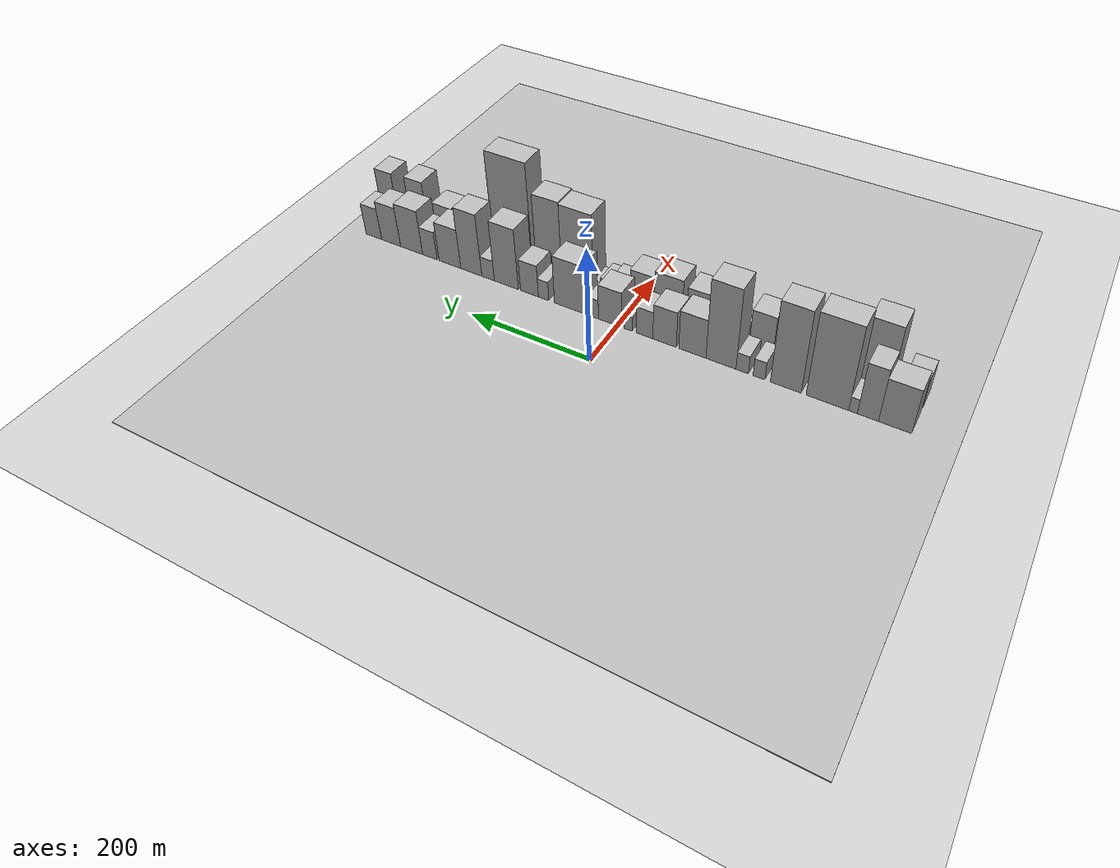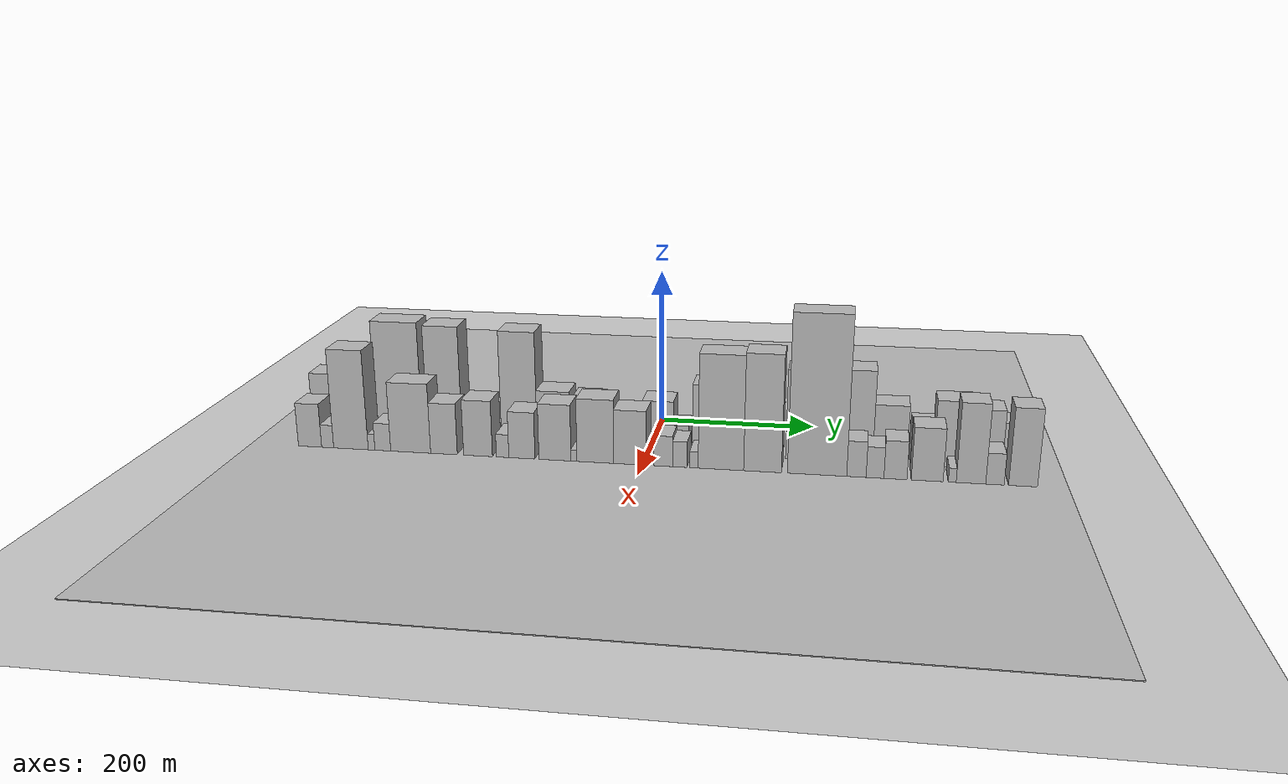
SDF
<sdf version="1.6">
 <world name="default">
  <include><name>ground_plane_1</name><uri>model://HANNAS_ground_plane</uri></include>
  <include>
   <name>ground_plane_2</name>
   <uri>model://HANNAS_ground_plane</uri>
   <pose>100 0 0  0 0 0</pose>
  </include>
  <model name="building_1">
   <static>1</static>
   <pose>100.0000 -415.4575 0 0.000000 0.000000 0.000000</pose>
   <link name="link">
    <pose>0 0 40.50 0 0 0</pose>
    <collision name="collision"><geometry><box><size>40.0000 45.0849 81.0000</size></box></geometry></collision>
    <visual name="visual">
     <cast_shadows>0</cast_shadows>
     <geometry><box><size>40.0000 45.0849 81.0000</size></box></geometry>
     <material>
      <script>
       <uri>model://HANNAS_wall/materials/scripts</uri>
       <uri>model://HANNAS_wall/materials/textures</uri>
       <name>vrc/HANNAS_wall</name>
      </script>
     </material>
    </visual>
   </link>
  </model>
  <model name="building_2">
   <static>1</static>
   <pose>100.0000 -378.4320 0 0.000000 0.000000 0.000000</pose>
   <link name="link">
    <pose>0 0 48.00 0 0 0</pose>
    <collision name="collision"><geometry><box><size>40.0000 28.9662 96.0000</size></box></geometry></collision>
    <visual name="visual">
     <cast_shadows>0</cast_shadows>
     <geometry><box><size>40.0000 28.9662 96.0000</size></box></geometry>
     <material>
      <script>
       <uri>model://HANNAS_wall/materials/scripts</uri>
       <uri>model://HANNAS_wall/materials/textures</uri>
       <name>vrc/HANNAS_wall</name>
      </script>
     </material>
    </visual>
   </link>
  </model>
  <model name="building_3">
   <static>1</static>
   <pose>100.0000 -357.8599 0 0.000000 0.000000 0.000000</pose>
   <link name="link">
    <pose>0 0 13.50 0 0 0</pose>
    <collision name="collision"><geometry><box><size>40.0000 12.1781 27.0000</size></box></geometry></collision>
    <visual name="visual">
     <cast_shadows>0</cast_shadows>
     <geometry><box><size>40.0000 12.1781 27.0000</size></box></geometry>
     <material>
      <script>
       <uri>model://HANNAS_wall/materials/scripts</uri>
       <uri>model://HANNAS_wall/materials/textures</uri>
       <name>vrc/HANNAS_wall</name>
      </script>
     </material>
    </visual>
   </link>
  </model>
  <model name="building_4">
   <static>1</static>
   <pose>100.0000 -321.5993 0 0.000000 0.000000 0.000000</pose>
   <link name="link">
    <pose>0 0 76.50 0 0 0</pose>
    <collision name="collision"><geometry><box><size>40.0000 60.3430 153.0000</size></box></geometry></collision>
    <visual name="visual">
     <cast_shadows>0</cast_shadows>
     <geometry><box><size>40.0000 60.3430 153.0000</size></box></geometry>
     <material>
      <script>
       <uri>model://HANNAS_wall/materials/scripts</uri>
       <uri>model://HANNAS_wall/materials/textures</uri>
       <name>vrc/HANNAS_wall</name>
      </script>
     </material>
    </visual>
   </link>
  </model>
  <model name="building_5">
   <static>1</static>
   <pose>100.0000 -261.8139 0 0.000000 0.000000 0.000000</pose>
   <link name="link">
    <pose>0 0 75.00 0 0 0</pose>
    <collision name="collision"><geometry><box><size>40.0000 45.2278 150.0000</size></box></geometry></collision>
    <visual name="visual">
     <cast_shadows>0</cast_shadows>
     <geometry><box><size>40.0000 45.2278 150.0000</size></box></geometry>
     <material>
      <script>
       <uri>model://HANNAS_wall/materials/scripts</uri>
       <uri>model://HANNAS_wall/materials/textures</uri>
       <name>vrc/HANNAS_wall</name>
      </script>
     </material>
    </visual>
   </link>
  </model>
  <model name="building_6">
   <static>1</static>
   <pose>100.0000 -222.3856 0 0.000000 0.000000 0.000000</pose>
   <link name="link">
    <pose>0 0 16.50 0 0 0</pose>
    <collision name="collision"><geometry><box><size>40.0000 17.6289 33.0000</size></box></geometry></collision>
    <visual name="visual">
     <cast_shadows>0</cast_shadows>
     <geometry><box><size>40.0000 17.6289 33.0000</size></box></geometry>
     <material>
      <script>
       <uri>model://HANNAS_wall/materials/scripts</uri>
       <uri>model://HANNAS_wall/materials/textures</uri>
       <name>vrc/HANNAS_wall</name>
      </script>
     </material>
    </visual>
   </link>
  </model>
  <model name="building_7">
   <static>1</static>
   <pose>100.0000 -197.1888 0 0.000000 0.000000 0.000000</pose>
   <link name="link">
    <pose>0 0 16.50 0 0 0</pose>
    <collision name="collision"><geometry><box><size>40.0000 18.7646 33.0000</size></box></geometry></collision>
    <visual name="visual">
     <cast_shadows>0</cast_shadows>
     <geometry><box><size>40.0000 18.7646 33.0000</size></box></geometry>
     <material>
      <script>
       <uri>model://HANNAS_wall/materials/scripts</uri>
       <uri>model://HANNAS_wall/materials/textures</uri>
       <name>vrc/HANNAS_wall</name>
      </script>
     </material>
    </visual>
   </link>
  </model>
  <model name="building_8">
   <static>1</static>
   <pose>100.0000 -164.7695 0 0.000000 0.000000 0.000000</pose>
   <link name="link">
    <pose>0 0 73.50 0 0 0</pose>
    <collision name="collision"><geometry><box><size>40.0000 46.0741 147.0000</size></box></geometry></collision>
    <visual name="visual">
     <cast_shadows>0</cast_shadows>
     <geometry><box><size>40.0000 46.0741 147.0000</size></box></geometry>
     <material>
      <script>
       <uri>model://HANNAS_wall/materials/scripts</uri>
       <uri>model://HANNAS_wall/materials/textures</uri>
       <name>vrc/HANNAS_wall</name>
      </script>
     </material>
    </visual>
   </link>
  </model>
  <model name="building_9">
   <static>1</static>
   <pose>100.0000 -120.5435 0 0.000000 0.000000 0.000000</pose>
   <link name="link">
    <pose>0 0 36.00 0 0 0</pose>
    <collision name="collision"><geometry><box><size>40.0000 42.3778 72.0000</size></box></geometry></collision>
    <visual name="visual">
     <cast_shadows>0</cast_shadows>
     <geometry><box><size>40.0000 42.3778 72.0000</size></box></geometry>
     <material>
      <script>
       <uri>model://HANNAS_wall/materials/scripts</uri>
       <uri>model://HANNAS_wall/materials/textures</uri>
       <name>vrc/HANNAS_wall</name>
      </script>
     </material>
    </visual>
   </link>
  </model>
  <model name="building_10">
   <static>1</static>
   <pose>100.0000 -76.6161 0 0.000000 0.000000 0.000000</pose>
   <link name="link">
    <pose>0 0 33.00 0 0 0</pose>
    <collision name="collision"><geometry><box><size>40.0000 37.4770 66.0000</size></box></geometry></collision>
    <visual name="visual">
     <cast_shadows>0</cast_shadows>
     <geometry><box><size>40.0000 37.4770 66.0000</size></box></geometry>
     <material>
      <script>
       <uri>model://HANNAS_wall/materials/scripts</uri>
       <uri>model://HANNAS_wall/materials/textures</uri>
       <name>vrc/HANNAS_wall</name>
      </script>
     </material>
    </visual>
   </link>
  </model>
  <model name="building_11">
   <static>1</static>
   <pose>100.0000 -44.6127 0 0.000000 0.000000 0.000000</pose>
   <link name="link">
    <pose>0 0 25.50 0 0 0</pose>
    <collision name="collision"><geometry><box><size>40.0000 26.5299 51.0000</size></box></geometry></collision>
    <visual name="visual">
     <cast_shadows>0</cast_shadows>
     <geometry><box><size>40.0000 26.5299 51.0000</size></box></geometry>
     <material>
      <script>
       <uri>model://HANNAS_wall/materials/scripts</uri>
       <uri>model://HANNAS_wall/materials/textures</uri>
       <name>vrc/HANNAS_wall</name>
      </script>
     </material>
    </visual>
   </link>
  </model>
  <model name="building_12">
   <static>1</static>
   <pose>100.0000 -17.7408 0 0.000000 0.000000 0.000000</pose>
   <link name="link">
    <pose>0 0 13.50 0 0 0</pose>
    <collision name="collision"><geometry><box><size>40.0000 13.2137 27.0000</size></box></geometry></collision>
    <visual name="visual">
     <cast_shadows>0</cast_shadows>
     <geometry><box><size>40.0000 13.2137 27.0000</size></box></geometry>
     <material>
      <script>
       <uri>model://HANNAS_wall/materials/scripts</uri>
       <uri>model://HANNAS_wall/materials/textures</uri>
       <name>vrc/HANNAS_wall</name>
      </script>
     </material>
    </visual>
   </link>
  </model>
  <model name="building_13">
   <static>1</static>
   <pose>100.0000 12.1810 0 0.000000 0.000000 0.000000</pose>
   <link name="link">
    <pose>0 0 33.00 0 0 0</pose>
    <collision name="collision"><geometry><box><size>40.0000 38.6299 66.0000</size></box></geometry></collision>
    <visual name="visual">
     <cast_shadows>0</cast_shadows>
     <geometry><box><size>40.0000 38.6299 66.0000</size></box></geometry>
     <material>
      <script>
       <uri>model://HANNAS_wall/materials/scripts</uri>
       <uri>model://HANNAS_wall/materials/textures</uri>
       <name>vrc/HANNAS_wall</name>
      </script>
     </material>
    </visual>
   </link>
  </model>
  <model name="building_14">
   <static>1</static>
   <pose>100.0000 40.8320 0 0.000000 0.000000 0.000000</pose>
   <link name="link">
    <pose>0 0 18.00 0 0 0</pose>
    <collision name="collision"><geometry><box><size>40.0000 18.6721 36.0000</size></box></geometry></collision>
    <visual name="visual">
     <cast_shadows>0</cast_shadows>
     <geometry><box><size>40.0000 18.6721 36.0000</size></box></geometry>
     <material>
      <script>
       <uri>model://HANNAS_wall/materials/scripts</uri>
       <uri>model://HANNAS_wall/materials/textures</uri>
       <name>vrc/HANNAS_wall</name>
      </script>
     </material>
    </visual>
   </link>
  </model>
  <model name="building_15">
   <static>1</static>
   <pose>100.0000 80.8800 0 0.000000 0.000000 0.000000</pose>
   <link name="link">
    <pose>0 0 45.00 0 0 0</pose>
    <collision name="collision"><geometry><box><size>40.0000 51.4240 90.0000</size></box></geometry></collision>
    <visual name="visual">
     <cast_shadows>0</cast_shadows>
     <geometry><box><size>40.0000 51.4240 90.0000</size></box></geometry>
     <material>
      <script>
       <uri>model://HANNAS_wall/materials/scripts</uri>
       <uri>model://HANNAS_wall/materials/textures</uri>
       <name>vrc/HANNAS_wall</name>
      </script>
     </material>
    </visual>
   </link>
  </model>
  <model name="building_16">
   <static>1</static>
   <pose>100.0000 125.7279 0 0.000000 0.000000 0.000000</pose>
   <link name="link">
    <pose>0 0 18.00 0 0 0</pose>
    <collision name="collision"><geometry><box><size>40.0000 18.2717 36.0000</size></box></geometry></collision>
    <visual name="visual">
     <cast_shadows>0</cast_shadows>
     <geometry><box><size>40.0000 18.2717 36.0000</size></box></geometry>
     <material>
      <script>
       <uri>model://HANNAS_wall/materials/scripts</uri>
       <uri>model://HANNAS_wall/materials/textures</uri>
       <name>vrc/HANNAS_wall</name>
      </script>
     </material>
    </visual>
   </link>
  </model>
  <model name="building_17">
   <static>1</static>
   <pose>100.0000 150.6101 0 0.000000 0.000000 0.000000</pose>
   <link name="link">
    <pose>0 0 30.00 0 0 0</pose>
    <collision name="collision"><geometry><box><size>40.0000 31.4926 60.0000</size></box></geometry></collision>
    <visual name="visual">
     <cast_shadows>0</cast_shadows>
     <geometry><box><size>40.0000 31.4926 60.0000</size></box></geometry>
     <material>
      <script>
       <uri>model://HANNAS_wall/materials/scripts</uri>
       <uri>model://HANNAS_wall/materials/textures</uri>
       <name>vrc/HANNAS_wall</name>
      </script>
     </material>
    </visual>
   </link>
  </model>
  <model name="building_18">
   <static>1</static>
   <pose>100.0000 192.0370 0 0.000000 0.000000 0.000000</pose>
   <link name="link">
    <pose>0 0 57.00 0 0 0</pose>
    <collision name="collision"><geometry><box><size>40.0000 43.3611 114.0000</size></box></geometry></collision>
    <visual name="visual">
     <cast_shadows>0</cast_shadows>
     <geometry><box><size>40.0000 43.3611 114.0000</size></box></geometry>
     <material>
      <script>
       <uri>model://HANNAS_wall/materials/scripts</uri>
       <uri>model://HANNAS_wall/materials/textures</uri>
       <name>vrc/HANNAS_wall</name>
      </script>
     </material>
    </visual>
   </link>
  </model>
  <model name="building_19">
   <static>1</static>
   <pose>100.0000 225.2118 0 0.000000 0.000000 0.000000</pose>
   <link name="link">
    <pose>0 0 19.50 0 0 0</pose>
    <collision name="collision"><geometry><box><size>40.0000 22.9885 39.0000</size></box></geometry></collision>
    <visual name="visual">
     <cast_shadows>0</cast_shadows>
     <geometry><box><size>40.0000 22.9885 39.0000</size></box></geometry>
     <material>
      <script>
       <uri>model://HANNAS_wall/materials/scripts</uri>
       <uri>model://HANNAS_wall/materials/textures</uri>
       <name>vrc/HANNAS_wall</name>
      </script>
     </material>
    </visual>
   </link>
  </model>
  <model name="building_20">
   <static>1</static>
   <pose>100.0000 256.2122 0 0.000000 0.000000 0.000000</pose>
   <link name="link">
    <pose>0 0 58.50 0 0 0</pose>
    <collision name="collision"><geometry><box><size>40.0000 39.0124 117.0000</size></box></geometry></collision>
    <visual name="visual">
     <cast_shadows>0</cast_shadows>
     <geometry><box><size>40.0000 39.0124 117.0000</size></box></geometry>
     <material>
      <script>
       <uri>model://HANNAS_wall/materials/scripts</uri>
       <uri>model://HANNAS_wall/materials/textures</uri>
       <name>vrc/HANNAS_wall</name>
      </script>
     </material>
    </visual>
   </link>
  </model>
  <model name="building_21">
   <static>1</static>
   <pose>100.0000 296.2039 0 0.000000 0.000000 0.000000</pose>
   <link name="link">
    <pose>0 0 37.50 0 0 0</pose>
    <collision name="collision"><geometry><box><size>40.0000 40.9709 75.0000</size></box></geometry></collision>
    <visual name="visual">
     <cast_shadows>0</cast_shadows>
     <geometry><box><size>40.0000 40.9709 75.0000</size></box></geometry>
     <material>
      <script>
       <uri>model://HANNAS_wall/materials/scripts</uri>
       <uri>model://HANNAS_wall/materials/textures</uri>
       <name>vrc/HANNAS_wall</name>
      </script>
     </material>
    </visual>
   </link>
  </model>
  <model name="building_22">
   <static>1</static>
   <pose>100.0000 334.5233 0 0.000000 0.000000 0.000000</pose>
   <link name="link">
    <pose>0 0 27.00 0 0 0</pose>
    <collision name="collision"><geometry><box><size>40.0000 27.6679 54.0000</size></box></geometry></collision>
    <visual name="visual">
     <cast_shadows>0</cast_shadows>
     <geometry><box><size>40.0000 27.6679 54.0000</size></box></geometry>
     <material>
      <script>
       <uri>model://HANNAS_wall/materials/scripts</uri>
       <uri>model://HANNAS_wall/materials/textures</uri>
       <name>vrc/HANNAS_wall</name>
      </script>
     </material>
    </visual>
   </link>
  </model>
  <model name="building_23">
   <static>1</static>
   <pose>100.0000 369.9001 0 0.000000 0.000000 0.000000</pose>
   <link name="link">
    <pose>0 0 42.00 0 0 0</pose>
    <collision name="collision"><geometry><box><size>40.0000 43.0859 84.0000</size></box></geometry></collision>
    <visual name="visual">
     <cast_shadows>0</cast_shadows>
     <geometry><box><size>40.0000 43.0859 84.0000</size></box></geometry>
     <material>
      <script>
       <uri>model://HANNAS_wall/materials/scripts</uri>
       <uri>model://HANNAS_wall/materials/textures</uri>
       <name>vrc/HANNAS_wall</name>
      </script>
     </material>
    </visual>
   </link>
  </model>
  <model name="building_24">
   <static>1</static>
   <pose>100.0000 410.2824 0 0.000000 0.000000 0.000000</pose>
   <link name="link">
    <pose>0 0 37.50 0 0 0</pose>
    <collision name="collision"><geometry><box><size>40.0000 37.6786 75.0000</size></box></geometry></collision>
    <visual name="visual">
     <cast_shadows>0</cast_shadows>
     <geometry><box><size>40.0000 37.6786 75.0000</size></box></geometry>
     <material>
      <script>
       <uri>model://HANNAS_wall/materials/scripts</uri>
       <uri>model://HANNAS_wall/materials/textures</uri>
       <name>vrc/HANNAS_wall</name>
      </script>
     </material>
    </visual>
   </link>
  </model>
  <model name="building_25">
   <static>1</static>
   <pose>100.0000 444.6704 0 0.000000 0.000000 0.000000</pose>
   <link name="link">
    <pose>0 0 30.00 0 0 0</pose>
    <collision name="collision"><geometry><box><size>40.0000 31.0974 60.0000</size></box></geometry></collision>
    <visual name="visual">
     <cast_shadows>0</cast_shadows>
     <geometry><box><size>40.0000 31.0974 60.0000</size></box></geometry>
     <material>
      <script>
       <uri>model://HANNAS_wall/materials/scripts</uri>
       <uri>model://HANNAS_wall/materials/textures</uri>
       <name>vrc/HANNAS_wall</name>
      </script>
     </material>
    </visual>
   </link>
  </model>
  <model name="building_26">
   <static>1</static>
   <pose>149.0000 -422.6724 0 0.000000 0.000000 0.000000</pose>
   <link name="link">
    <pose>0 0 28.50 0 0 0</pose>
    <collision name="collision"><geometry><box><size>40.0000 30.6551 57.0000</size></box></geometry></collision>
    <visual name="visual">
     <cast_shadows>0</cast_shadows>
     <geometry><box><size>40.0000 30.6551 57.0000</size></box></geometry>
     <material>
      <script>
       <uri>model://HANNAS_wall/materials/scripts</uri>
       <uri>model://HANNAS_wall/materials/textures</uri>
       <name>vrc/HANNAS_wall</name>
      </script>
     </material>
    </visual>
   </link>
  </model>
  <model name="building_27">
   <static>1</static>
   <pose>149.0000 -399.4349 0 0.000000 0.000000 0.000000</pose>
   <link name="link">
    <pose>0 0 15.00 0 0 0</pose>
    <collision name="collision"><geometry><box><size>40.0000 15.8199 30.0000</size></box></geometry></collision>
    <visual name="visual">
     <cast_shadows>0</cast_shadows>
     <geometry><box><size>40.0000 15.8199 30.0000</size></box></geometry>
     <material>
      <script>
       <uri>model://HANNAS_wall/materials/scripts</uri>
       <uri>model://HANNAS_wall/materials/textures</uri>
       <name>vrc/HANNAS_wall</name>
      </script>
     </material>
    </visual>
   </link>
  </model>
  <model name="building_28">
   <static>1</static>
   <pose>149.0000 -368.9169 0 0.000000 0.000000 0.000000</pose>
   <link name="link">
    <pose>0 0 64.50 0 0 0</pose>
    <collision name="collision"><geometry><box><size>40.0000 45.2162 129.0000</size></box></geometry></collision>
    <visual name="visual">
     <cast_shadows>0</cast_shadows>
     <geometry><box><size>40.0000 45.2162 129.0000</size></box></geometry>
     <material>
      <script>
       <uri>model://HANNAS_wall/materials/scripts</uri>
       <uri>model://HANNAS_wall/materials/textures</uri>
       <name>vrc/HANNAS_wall</name>
      </script>
     </material>
    </visual>
   </link>
  </model>
  <model name="building_29">
   <static>1</static>
   <pose>149.0000 -341.9651 0 0.000000 0.000000 0.000000</pose>
   <link name="link">
    <pose>0 0 10.50 0 0 0</pose>
    <collision name="collision"><geometry><box><size>40.0000 8.6873 21.0000</size></box></geometry></collision>
    <visual name="visual">
     <cast_shadows>0</cast_shadows>
     <geometry><box><size>40.0000 8.6873 21.0000</size></box></geometry>
     <material>
      <script>
       <uri>model://HANNAS_wall/materials/scripts</uri>
       <uri>model://HANNAS_wall/materials/textures</uri>
       <name>vrc/HANNAS_wall</name>
      </script>
     </material>
    </visual>
   </link>
  </model>
  <model name="building_30">
   <static>1</static>
   <pose>149.0000 -327.3448 0 0.000000 0.000000 0.000000</pose>
   <link name="link">
    <pose>0 0 18.00 0 0 0</pose>
    <collision name="collision"><geometry><box><size>40.0000 20.5534 36.0000</size></box></geometry></collision>
    <visual name="visual">
     <cast_shadows>0</cast_shadows>
     <geometry><box><size>40.0000 20.5534 36.0000</size></box></geometry>
     <material>
      <script>
       <uri>model://HANNAS_wall/materials/scripts</uri>
       <uri>model://HANNAS_wall/materials/textures</uri>
       <name>vrc/HANNAS_wall</name>
      </script>
     </material>
    </visual>
   </link>
  </model>
  <model name="building_31">
   <static>1</static>
   <pose>149.0000 -291.2677 0 0.000000 0.000000 0.000000</pose>
   <link name="link">
    <pose>0 0 45.00 0 0 0</pose>
    <collision name="collision"><geometry><box><size>40.0000 51.6007 90.0000</size></box></geometry></collision>
    <visual name="visual">
     <cast_shadows>0</cast_shadows>
     <geometry><box><size>40.0000 51.6007 90.0000</size></box></geometry>
     <material>
      <script>
       <uri>model://HANNAS_wall/materials/scripts</uri>
       <uri>model://HANNAS_wall/materials/textures</uri>
       <name>vrc/HANNAS_wall</name>
      </script>
     </material>
    </visual>
   </link>
  </model>
  <model name="building_32">
   <static>1</static>
   <pose>149.0000 -248.3325 0 0.000000 0.000000 0.000000</pose>
   <link name="link">
    <pose>0 0 33.00 0 0 0</pose>
    <collision name="collision"><geometry><box><size>40.0000 34.2697 66.0000</size></box></geometry></collision>
    <visual name="visual">
     <cast_shadows>0</cast_shadows>
     <geometry><box><size>40.0000 34.2697 66.0000</size></box></geometry>
     <material>
      <script>
       <uri>model://HANNAS_wall/materials/scripts</uri>
       <uri>model://HANNAS_wall/materials/textures</uri>
       <name>vrc/HANNAS_wall</name>
      </script>
     </material>
    </visual>
   </link>
  </model>
  <model name="building_33">
   <static>1</static>
   <pose>149.0000 -204.8828 0 0.000000 0.000000 0.000000</pose>
   <link name="link">
    <pose>0 0 36.00 0 0 0</pose>
    <collision name="collision"><geometry><box><size>40.0000 36.6297 72.0000</size></box></geometry></collision>
    <visual name="visual">
     <cast_shadows>0</cast_shadows>
     <geometry><box><size>40.0000 36.6297 72.0000</size></box></geometry>
     <material>
      <script>
       <uri>model://HANNAS_wall/materials/scripts</uri>
       <uri>model://HANNAS_wall/materials/textures</uri>
       <name>vrc/HANNAS_wall</name>
      </script>
     </material>
    </visual>
   </link>
  </model>
  <model name="building_34">
   <static>1</static>
   <pose>149.0000 -173.7018 0 0.000000 0.000000 0.000000</pose>
   <link name="link">
    <pose>0 0 15.00 0 0 0</pose>
    <collision name="collision"><geometry><box><size>40.0000 15.7323 30.0000</size></box></geometry></collision>
    <visual name="visual">
     <cast_shadows>0</cast_shadows>
     <geometry><box><size>40.0000 15.7323 30.0000</size></box></geometry>
     <material>
      <script>
       <uri>model://HANNAS_wall/materials/scripts</uri>
       <uri>model://HANNAS_wall/materials/textures</uri>
       <name>vrc/HANNAS_wall</name>
      </script>
     </material>
    </visual>
   </link>
  </model>
  <model name="building_35">
   <static>1</static>
   <pose>149.0000 -149.3872 0 0.000000 0.000000 0.000000</pose>
   <link name="link">
    <pose>0 0 30.00 0 0 0</pose>
    <collision name="collision"><geometry><box><size>40.0000 32.8970 60.0000</size></box></geometry></collision>
    <visual name="visual">
     <cast_shadows>0</cast_shadows>
     <geometry><box><size>40.0000 32.8970 60.0000</size></box></geometry>
     <material>
      <script>
       <uri>model://HANNAS_wall/materials/scripts</uri>
       <uri>model://HANNAS_wall/materials/textures</uri>
       <name>vrc/HANNAS_wall</name>
      </script>
     </material>
    </visual>
   </link>
  </model>
  <model name="building_36">
   <static>1</static>
   <pose>149.0000 -107.8915 0 0.000000 0.000000 0.000000</pose>
   <link name="link">
    <pose>0 0 36.00 0 0 0</pose>
    <collision name="collision"><geometry><box><size>40.0000 40.0944 72.0000</size></box></geometry></collision>
    <visual name="visual">
     <cast_shadows>0</cast_shadows>
     <geometry><box><size>40.0000 40.0944 72.0000</size></box></geometry>
     <material>
      <script>
       <uri>model://HANNAS_wall/materials/scripts</uri>
       <uri>model://HANNAS_wall/materials/textures</uri>
       <name>vrc/HANNAS_wall</name>
      </script>
     </material>
    </visual>
   </link>
  </model>
  <model name="building_37">
   <static>1</static>
   <pose>149.0000 -84.1888 0 0.000000 0.000000 0.000000</pose>
   <link name="link">
    <pose>0 0 7.50 0 0 0</pose>
    <collision name="collision"><geometry><box><size>40.0000 7.3109 15.0000</size></box></geometry></collision>
    <visual name="visual">
     <cast_shadows>0</cast_shadows>
     <geometry><box><size>40.0000 7.3109 15.0000</size></box></geometry>
     <material>
      <script>
       <uri>model://HANNAS_wall/materials/scripts</uri>
       <uri>model://HANNAS_wall/materials/textures</uri>
       <name>vrc/HANNAS_wall</name>
      </script>
     </material>
    </visual>
   </link>
  </model>
  <model name="building_38">
   <static>1</static>
   <pose>149.0000 -57.7565 0 0.000000 0.000000 0.000000</pose>
   <link name="link">
    <pose>0 0 40.50 0 0 0</pose>
    <collision name="collision"><geometry><box><size>40.0000 45.5537 81.0000</size></box></geometry></collision>
    <visual name="visual">
     <cast_shadows>0</cast_shadows>
     <geometry><box><size>40.0000 45.5537 81.0000</size></box></geometry>
     <material>
      <script>
       <uri>model://HANNAS_wall/materials/scripts</uri>
       <uri>model://HANNAS_wall/materials/textures</uri>
       <name>vrc/HANNAS_wall</name>
      </script>
     </material>
    </visual>
   </link>
  </model>
  <model name="building_39">
   <static>1</static>
   <pose>149.0000 -14.9854 0 0.000000 0.000000 0.000000</pose>
   <link name="link">
    <pose>0 0 34.50 0 0 0</pose>
    <collision name="collision"><geometry><box><size>40.0000 39.9886 69.0000</size></box></geometry></collision>
    <visual name="visual">
     <cast_shadows>0</cast_shadows>
     <geometry><box><size>40.0000 39.9886 69.0000</size></box></geometry>
     <material>
      <script>
       <uri>model://HANNAS_wall/materials/scripts</uri>
       <uri>model://HANNAS_wall/materials/textures</uri>
       <name>vrc/HANNAS_wall</name>
      </script>
     </material>
    </visual>
   </link>
  </model>
  <model name="building_40">
   <static>1</static>
   <pose>149.0000 25.5649 0 0.000000 0.000000 0.000000</pose>
   <link name="link">
    <pose>0 0 19.50 0 0 0</pose>
    <collision name="collision"><geometry><box><size>40.0000 23.1121 39.0000</size></box></geometry></collision>
    <visual name="visual">
     <cast_shadows>0</cast_shadows>
     <geometry><box><size>40.0000 23.1121 39.0000</size></box></geometry>
     <material>
      <script>
       <uri>model://HANNAS_wall/materials/scripts</uri>
       <uri>model://HANNAS_wall/materials/textures</uri>
       <name>vrc/HANNAS_wall</name>
      </script>
     </material>
    </visual>
   </link>
  </model>
  <model name="building_41">
   <static>1</static>
   <pose>149.0000 46.0402 0 0.000000 0.000000 0.000000</pose>
   <link name="link">
    <pose>0 0 16.50 0 0 0</pose>
    <collision name="collision"><geometry><box><size>40.0000 17.8384 33.0000</size></box></geometry></collision>
    <visual name="visual">
     <cast_shadows>0</cast_shadows>
     <geometry><box><size>40.0000 17.8384 33.0000</size></box></geometry>
     <material>
      <script>
       <uri>model://HANNAS_wall/materials/scripts</uri>
       <uri>model://HANNAS_wall/materials/textures</uri>
       <name>vrc/HANNAS_wall</name>
      </script>
     </material>
    </visual>
   </link>
  </model>
  <model name="building_42">
   <static>1</static>
   <pose>149.0000 63.1005 0 0.000000 0.000000 0.000000</pose>
   <link name="link">
    <pose>0 0 10.50 0 0 0</pose>
    <collision name="collision"><geometry><box><size>40.0000 10.2821 21.0000</size></box></geometry></collision>
    <visual name="visual">
     <cast_shadows>0</cast_shadows>
     <geometry><box><size>40.0000 10.2821 21.0000</size></box></geometry>
     <material>
      <script>
       <uri>model://HANNAS_wall/materials/scripts</uri>
       <uri>model://HANNAS_wall/materials/textures</uri>
       <name>vrc/HANNAS_wall</name>
      </script>
     </material>
    </visual>
   </link>
  </model>
  <model name="building_43">
   <static>1</static>
   <pose>149.0000 95.6463 0 0.000000 0.000000 0.000000</pose>
   <link name="link">
    <pose>0 0 72.00 0 0 0</pose>
    <collision name="collision"><geometry><box><size>40.0000 54.8095 144.0000</size></box></geometry></collision>
    <visual name="visual">
     <cast_shadows>0</cast_shadows>
     <geometry><box><size>40.0000 54.8095 144.0000</size></box></geometry>
     <material>
      <script>
       <uri>model://HANNAS_wall/materials/scripts</uri>
       <uri>model://HANNAS_wall/materials/textures</uri>
       <name>vrc/HANNAS_wall</name>
      </script>
     </material>
    </visual>
   </link>
  </model>
  <model name="building_44">
   <static>1</static>
   <pose>149.0000 145.6333 0 0.000000 0.000000 0.000000</pose>
   <link name="link">
    <pose>0 0 73.50 0 0 0</pose>
    <collision name="collision"><geometry><box><size>40.0000 45.1645 147.0000</size></box></geometry></collision>
    <visual name="visual">
     <cast_shadows>0</cast_shadows>
     <geometry><box><size>40.0000 45.1645 147.0000</size></box></geometry>
     <material>
      <script>
       <uri>model://HANNAS_wall/materials/scripts</uri>
       <uri>model://HANNAS_wall/materials/textures</uri>
       <name>vrc/HANNAS_wall</name>
      </script>
     </material>
    </visual>
   </link>
  </model>
  <model name="building_45">
   <static>1</static>
   <pose>149.0000 210.2362 0 0.000000 0.000000 0.000000</pose>
   <link name="link">
    <pose>0 0 99.00 0 0 0</pose>
    <collision name="collision"><geometry><box><size>40.0000 70.0414 198.0000</size></box></geometry></collision>
    <visual name="visual">
     <cast_shadows>0</cast_shadows>
     <geometry><box><size>40.0000 70.0414 198.0000</size></box></geometry>
     <material>
      <script>
       <uri>model://HANNAS_wall/materials/scripts</uri>
       <uri>model://HANNAS_wall/materials/textures</uri>
       <name>vrc/HANNAS_wall</name>
      </script>
     </material>
    </visual>
   </link>
  </model>
  <model name="building_46">
   <static>1</static>
   <pose>149.0000 256.5936 0 0.000000 0.000000 0.000000</pose>
   <link name="link">
    <pose>0 0 22.50 0 0 0</pose>
    <collision name="collision"><geometry><box><size>40.0000 22.6735 45.0000</size></box></geometry></collision>
    <visual name="visual">
     <cast_shadows>0</cast_shadows>
     <geometry><box><size>40.0000 22.6735 45.0000</size></box></geometry>
     <material>
      <script>
       <uri>model://HANNAS_wall/materials/scripts</uri>
       <uri>model://HANNAS_wall/materials/textures</uri>
       <name>vrc/HANNAS_wall</name>
      </script>
     </material>
    </visual>
   </link>
  </model>
  <model name="building_47">
   <static>1</static>
   <pose>149.0000 278.2958 0 0.000000 0.000000 0.000000</pose>
   <link name="link">
    <pose>0 0 19.50 0 0 0</pose>
    <collision name="collision"><geometry><box><size>40.0000 20.7308 39.0000</size></box></geometry></collision>
    <visual name="visual">
     <cast_shadows>0</cast_shadows>
     <geometry><box><size>40.0000 20.7308 39.0000</size></box></geometry>
     <material>
      <script>
       <uri>model://HANNAS_wall/materials/scripts</uri>
       <uri>model://HANNAS_wall/materials/textures</uri>
       <name>vrc/HANNAS_wall</name>
      </script>
     </material>
    </visual>
   </link>
  </model>
  <model name="building_48">
   <static>1</static>
   <pose>149.0000 302.0396 0 0.000000 0.000000 0.000000</pose>
   <link name="link">
    <pose>0 0 24.00 0 0 0</pose>
    <collision name="collision"><geometry><box><size>40.0000 26.7567 48.0000</size></box></geometry></collision>
    <visual name="visual">
     <cast_shadows>0</cast_shadows>
     <geometry><box><size>40.0000 26.7567 48.0000</size></box></geometry>
     <material>
      <script>
       <uri>model://HANNAS_wall/materials/scripts</uri>
       <uri>model://HANNAS_wall/materials/textures</uri>
       <name>vrc/HANNAS_wall</name>
      </script>
     </material>
    </visual>
   </link>
  </model>
  <model name="building_49">
   <static>1</static>
   <pose>149.0000 338.7694 0 0.000000 0.000000 0.000000</pose>
   <link name="link">
    <pose>0 0 33.00 0 0 0</pose>
    <collision name="collision"><geometry><box><size>40.0000 36.7030 66.0000</size></box></geometry></collision>
    <visual name="visual">
     <cast_shadows>0</cast_shadows>
     <geometry><box><size>40.0000 36.7030 66.0000</size></box></geometry>
     <material>
      <script>
       <uri>model://HANNAS_wall/materials/scripts</uri>
       <uri>model://HANNAS_wall/materials/textures</uri>
       <name>vrc/HANNAS_wall</name>
      </script>
     </material>
    </visual>
   </link>
  </model>
  <model name="building_50">
   <static>1</static>
   <pose>149.0000 367.6076 0 0.000000 0.000000 0.000000</pose>
   <link name="link">
    <pose>0 0 9.00 0 0 0</pose>
    <collision name="collision"><geometry><box><size>40.0000 8.9734 18.0000</size></box></geometry></collision>
    <visual name="visual">
     <cast_shadows>0</cast_shadows>
     <geometry><box><size>40.0000 8.9734 18.0000</size></box></geometry>
     <material>
      <script>
       <uri>model://HANNAS_wall/materials/scripts</uri>
       <uri>model://HANNAS_wall/materials/textures</uri>
       <name>vrc/HANNAS_wall</name>
      </script>
     </material>
    </visual>
   </link>
  </model>
  <model name="building_51">
   <static>1</static>
   <pose>149.0000 388.9292 0 0.000000 0.000000 0.000000</pose>
   <link name="link">
    <pose>0 0 49.50 0 0 0</pose>
    <collision name="collision"><geometry><box><size>40.0000 33.6698 99.0000</size></box></geometry></collision>
    <visual name="visual">
     <cast_shadows>0</cast_shadows>
     <geometry><box><size>40.0000 33.6698 99.0000</size></box></geometry>
     <material>
      <script>
       <uri>model://HANNAS_wall/materials/scripts</uri>
       <uri>model://HANNAS_wall/materials/textures</uri>
       <name>vrc/HANNAS_wall</name>
      </script>
     </material>
    </visual>
   </link>
  </model>
  <model name="building_52">
   <static>1</static>
   <pose>149.0000 416.2588 0 0.000000 0.000000 0.000000</pose>
   <link name="link">
    <pose>0 0 19.50 0 0 0</pose>
    <collision name="collision"><geometry><box><size>40.0000 20.9893 39.0000</size></box></geometry></collision>
    <visual name="visual">
     <cast_shadows>0</cast_shadows>
     <geometry><box><size>40.0000 20.9893 39.0000</size></box></geometry>
     <material>
      <script>
       <uri>model://HANNAS_wall/materials/scripts</uri>
       <uri>model://HANNAS_wall/materials/textures</uri>
       <name>vrc/HANNAS_wall</name>
      </script>
     </material>
    </visual>
   </link>
  </model>
  <model name="building_53">
   <static>1</static>
   <pose>149.0000 448.0881 0 0.000000 0.000000 0.000000</pose>
   <link name="link">
    <pose>0 0 48.00 0 0 0</pose>
    <collision name="collision"><geometry><box><size>40.0000 32.6693 96.0000</size></box></geometry></collision>
    <visual name="visual">
     <cast_shadows>0</cast_shadows>
     <geometry><box><size>40.0000 32.6693 96.0000</size></box></geometry>
     <material>
      <script>
       <uri>model://HANNAS_wall/materials/scripts</uri>
       <uri>model://HANNAS_wall/materials/textures</uri>
       <name>vrc/HANNAS_wall</name>
      </script>
     </material>
    </visual>
   </link>
  </model>
 </world>
</sdf>
